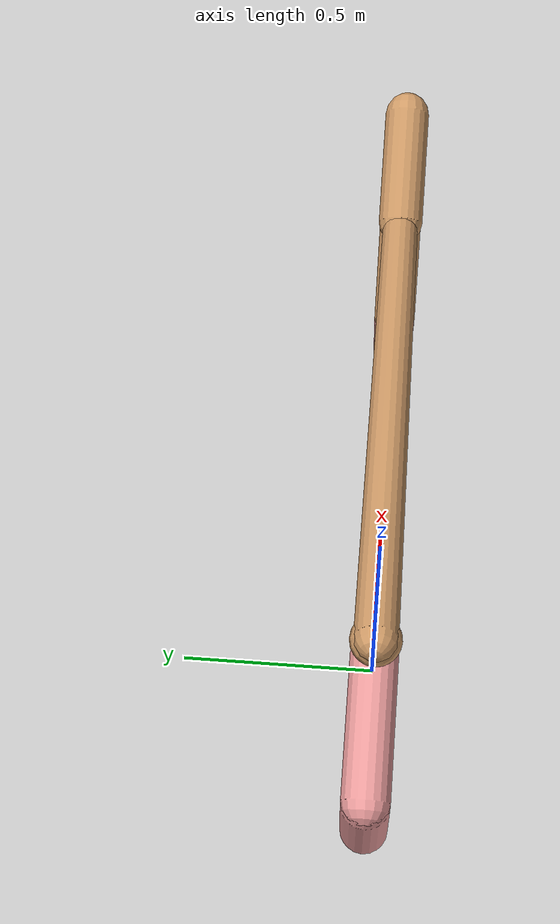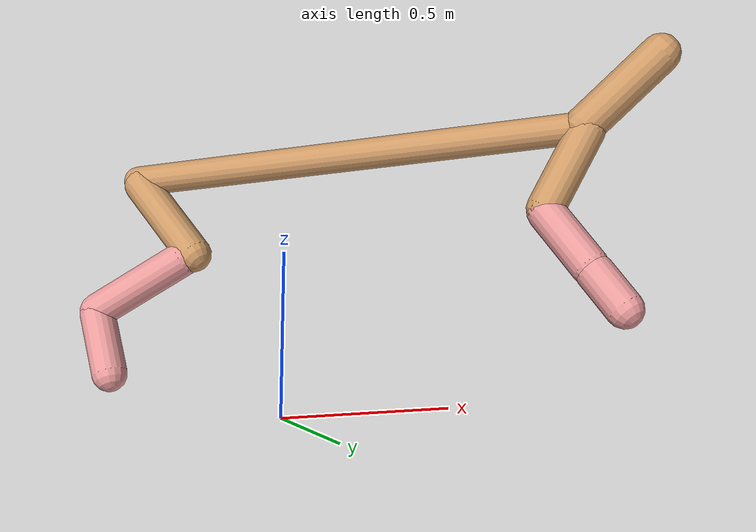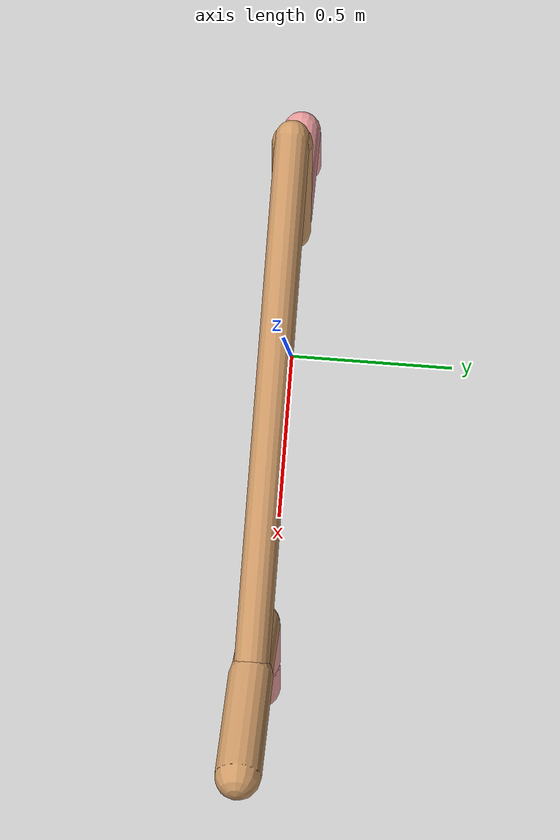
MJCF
<mujoco model="cheetah">
  <compiler angle="radian" coordinate="local" inertiafromgeom="true" settotalmass="14" />
  <default>
    <joint armature=".1" damping=".01" limited="true" solimplimit="0 .8 .03" solreflimit=".02 1" stiffness="8" />
    <geom conaffinity="0" condim="3" contype="1" friction="0.8 .1 .1" rgba="0.8 0.6 .4 1" solimp="0.0 0.8 0.01" solref="0.02 1" />
    <motor ctrllimited="true" ctrlrange="-1 1" />
  </default>
  <size nstack="300000" nuser_geom="1" />
  <option gravity="0 0 -9.81" timestep="0.01" />
  <worldbody>
    <body name="torso" pos="0.0 0.0 0.7829801726823348">
      <joint armature="0" axis="1 0 0" damping="0" limited="false" name="ignorex" pos="0 0 0" stiffness="0" type="slide" />
      <joint armature="0" axis="0 0 1" damping="0" limited="false" name="ignorez" pos="0 0 0" stiffness="0" type="slide" />
      <joint armature="0" axis="0 1 0" damping="0" limited="false" name="ignorey" pos="0 0 0" stiffness="0" type="hinge" />
      <geom fromto="-0.5 0.0 0.0 0.9274483133384024 0.0 0.0" name="torso" size="0.04631665866208048" type="capsule" />
      <geom axisangle="0 1 0 .87" name="head" pos="1.0274483133384025 0.0 0.1" size="0.058172679771615915 0.15" type="capsule" />

      <body name="bthigh" pos="-.5 0 0">
        <joint axis="0 1 0" damping="6" name="bthigh" pos="0 0 0" range="-.52 1.05" stiffness="240" type="hinge" />
        <geom axisangle="0 1 0 -3.8" name="bthigh" pos="0.10621704755265243 0.0 -0.13808216181844815" size="0.054585000969077285 0.15519671613469369" type="capsule" />
        <body name="bshin" pos="0.17243409510530483 0.0 -0.2661643236368963">
          <joint axis="0 1 0" damping="4.5" name="bshin" pos="0 0 0" range="-.785 .785" stiffness="180" type="hinge" />
          <geom axisangle="0 1 0 -2.03" name="bshin" pos="-0.1494347105204596 0.0 -0.0747173552602298" rgba="0.9 0.6 0.6 1" size="0.054585000969077285 0.16054832703589003" type="capsule" />
          <body name="bfoot" pos="-0.2988694210409192 0.0 -0.1494347105204596">
            <joint axis="0 1 0" damping="3" name="bfoot" pos="0 0 0" range="-.4 .785" stiffness="120" type="hinge" />
            <geom axisangle="0 1 0 -.27" name="bfoot" pos="0.03195313906039375 0.0 -0.10331514962860648" rgba="0.9 0.6 0.6 1" size="0.054585000969077285 0.10061028494249108" type="capsule" />
            <inertial mass="10" />
          </body>
        </body>
      </body>
      <body name="fthigh" pos="0.9274483133384024 0.0 0.0">
        <joint axis="0 1 0" damping="4.5" name="fthigh" pos="0 0 0" range="-1.5 0.8" stiffness="180" type="hinge" />
        <geom axisangle="0 1 0 .52" name="fthigh" pos="-0.06921339738673409 0.0 -0.1186515383772584" size="0.05475918400623699 0.13143888103617835" type="capsule" />
        <body name="fshin" pos="-0.13842679477346817 0.0 -0.2373030767545168">
          <joint axis="0 1 0" damping="3" name="fshin" pos="0 0 0" range="-1.2 1.1" stiffness="120" type="hinge" />
          <geom axisangle="0 1 0 -.6" name="fshin" pos="0.06427153260815821 0.0 -0.08899135284206522" rgba="0.9 0.6 0.6 1" size="0.05475918400623699 0.1047557999235707" type="capsule" />
          <body name="ffoot" pos="0.12854306521631642 0.0 -0.17798270568413044">
            <joint axis="0 1 0" damping="1.5" name="ffoot" pos="0 0 0" range="-3.1 -0.3" stiffness="60" type="hinge" />
            <geom axisangle="0 1 0 -.6" name="ffoot" pos="0.044555691089142084 0.0 -0.06930885280533214" rgba="0.9 0.6 0.6 1" size="0.05475918400623699 0.06917835844009387" type="capsule" />
            <inertial mass="10" />
          </body>
        </body>
      </body>
    </body>
  </worldbody>
  <actuator>
    <motor gear="120" joint="bthigh" name="bthigh" />
    <motor gear="90" joint="bshin" name="bshin" />
    <motor gear="60" joint="bfoot" name="bfoot" />
    <motor gear="120" joint="fthigh" name="fthigh" />
    <motor gear="60" joint="fshin" name="fshin" />
    <motor gear="30" joint="ffoot" name="ffoot" />
  </actuator>
</mujoco>
